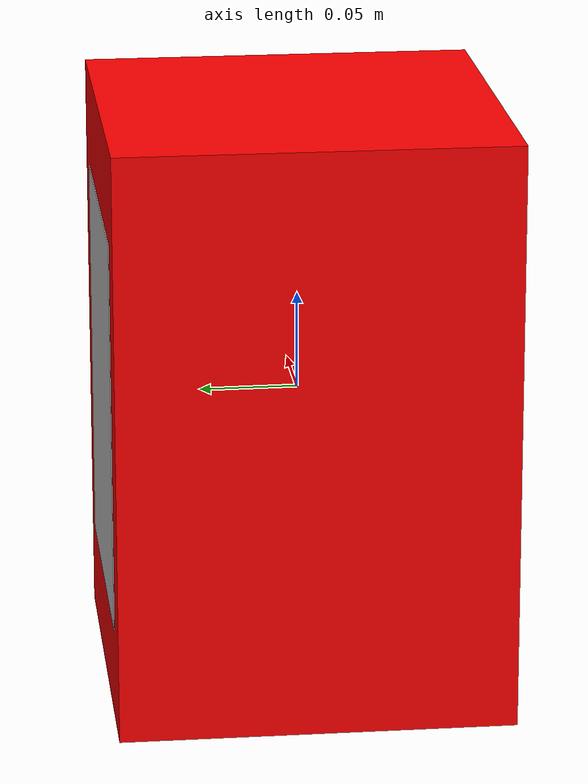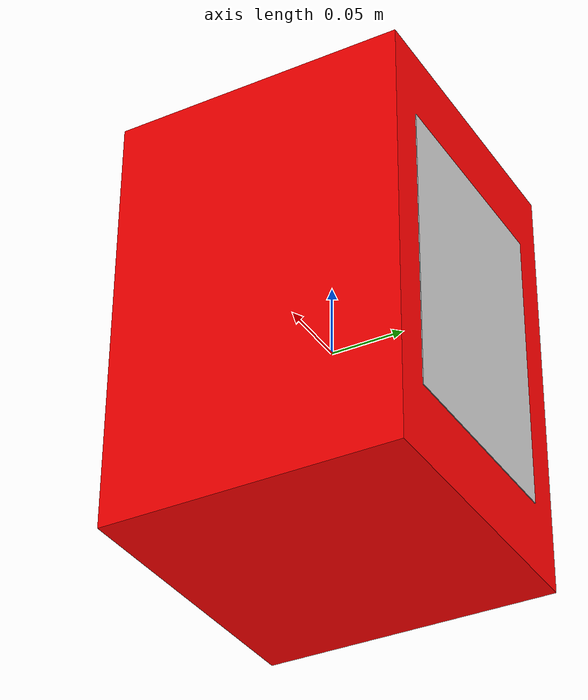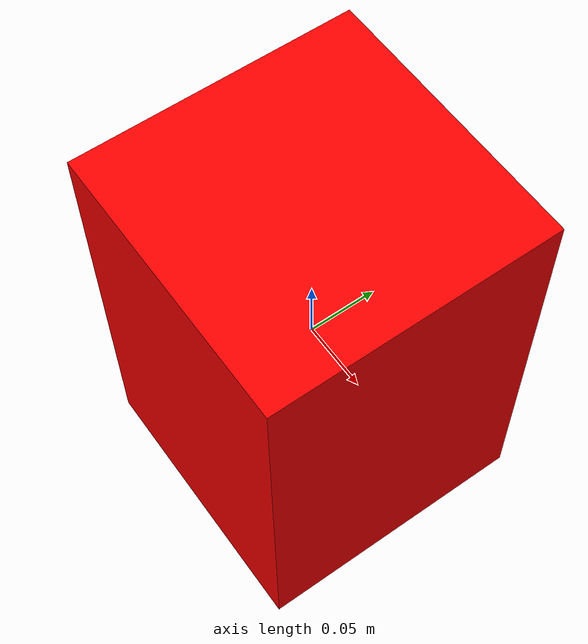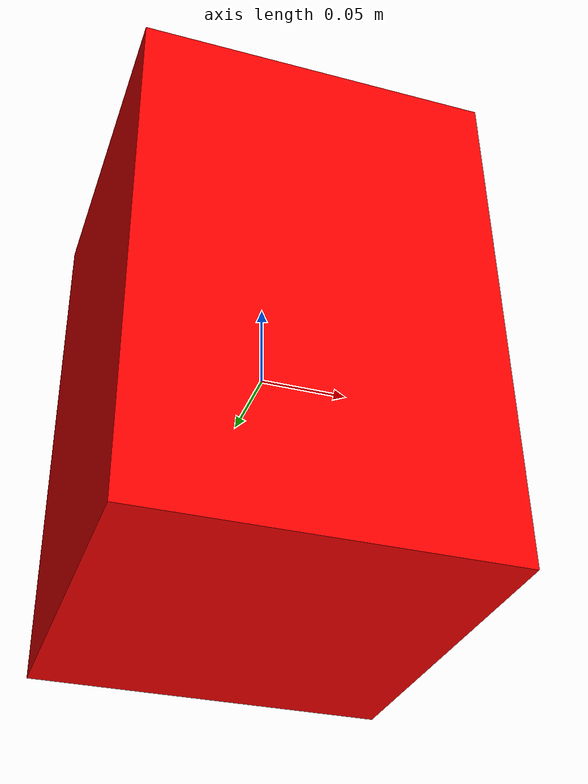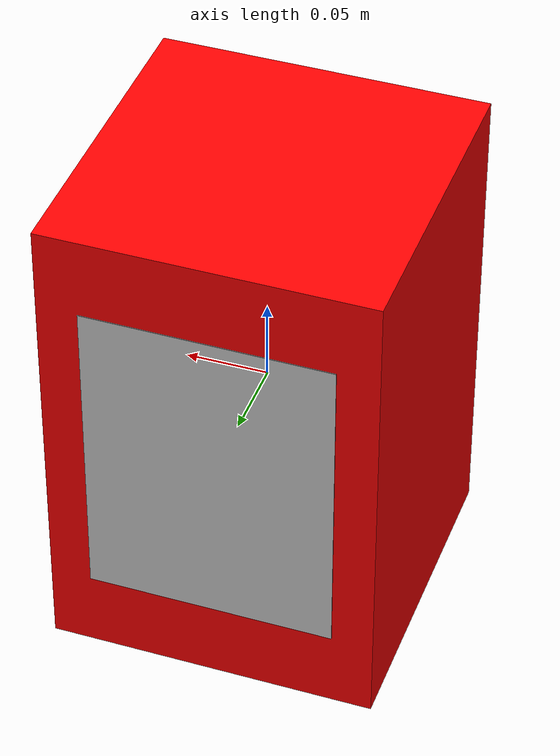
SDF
<?xml version="1.0"?>
<sdf version="1.4">
  <model name='red_brick'>
    <pose>0 0 0 0 0 0</pose>
    <static>false</static>
    <link name='object_link'>
      <inertial>
        <mass>0.4744</mass>
        <inertia> <!-- inertias are tricky to compute -->
          <!-- http://gazebosim.org/tutorials?tut=inertia&cat=build_robot -->
          <ixx>0.01079</ixx>       <!-- for a box: ixx = 0.083 * mass * (y*y + z*z) -->
          <ixy>0.0</ixy>         <!-- for a box: ixy = 0 -->
          <ixz>0.0</ixz>         <!-- for a box: ixz = 0 -->
          <iyy>0.01079</iyy>       <!-- for a box: iyy = 0.083 * mass * (x*x + z*z) -->
          <iyz>0.0</iyz>         <!-- for a box: iyz = 0 -->
          <izz>0.00664</izz>       <!-- for a box: izz = 0.083 * mass * (x*x + y*y) -->
        </inertia>
      </inertial>
      <collision name='collision'>
        <geometry>
          <box>
            <size>0.2 0.2 0.3</size>
          </box>
        </geometry>
        <max_contacts>10</max_contacts>
        <surface>
          <friction>
            <ode>
              <mu>1.5</mu>
              <mu2>1.5</mu2>
              <fdir1>1 0 0</fdir1>
            </ode>
          </friction>
          <contact>
            <ode>
              <kp>1400000.0</kp>
              <kd>280.0</kd>
              <max_vel>10.0</max_vel>
              <min_depth>0.00</min_depth>
            </ode>
          </contact>
        </surface>
      </collision>
      <visual name='visual'>
        <geometry>
          <box>
            <size>0.2 0.2 0.3</size>
          </box>
        </geometry>
        <material>
          <ambient>1.0 0.0 0.0 1</ambient>
          <diffuse>1.0 0.0 0.0 1</diffuse>
          <specular>0.01 0.01 0.01 1</specular>
          <emissive>0 0 0 1</emissive>
        </material>
      </visual>
      <self_collide>0</self_collide>
      <kinematic>0</kinematic>
      <gravity>1</gravity>
    </link>
    <joint name="brick_joint" type="fixed">
      <parent>object_link</parent>
      <child>iron_plate_link</child>
    </joint>
    <link name='iron_plate_link'>
      <pose>0.0 0.1 0 0 0 0</pose>
      <inertial>
        <mass>0.001</mass>
        <inertia> <!-- inertias are tricky to compute -->
          <!-- http://gazebosim.org/tutorials?tut=inertia&cat=build_robot -->
          <ixx>0.00001</ixx>       <!-- for a box: ixx = 0.083 * mass * (y*y + z*z) -->
          <ixy>0.0</ixy>         <!-- for a box: ixy = 0 -->
          <ixz>0.0</ixz>         <!-- for a box: ixz = 0 -->
          <iyy>0.00001</iyy>       <!-- for a box: iyy = 0.083 * mass * (x*x + z*z) -->
          <iyz>0.0</iyz>         <!-- for a box: iyz = 0 -->
          <izz>0.00001</izz>       <!-- for a box: izz = 0.083 * mass * (x*x + y*y) -->
        </inertia>
      </inertial>
      <visual name='visual'>
        <geometry>
          <box>
            <size>0.15 0.001 0.2</size>
          </box>
        </geometry>
        <material>
          <ambient>0.8 0.8 0.8 1</ambient>
          <diffuse>0.8 0.8 0.8 1</diffuse>
          <specular>0.01 0.01 0.01 1</specular>
          <emissive>0 0 0 1</emissive>
        </material>
      </visual>
      <self_collide>0</self_collide>
      <kinematic>0</kinematic>
      <gravity>1</gravity>
    </link>
  </model>
</sdf>
